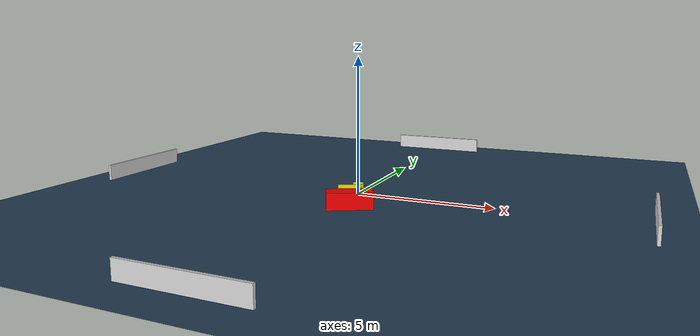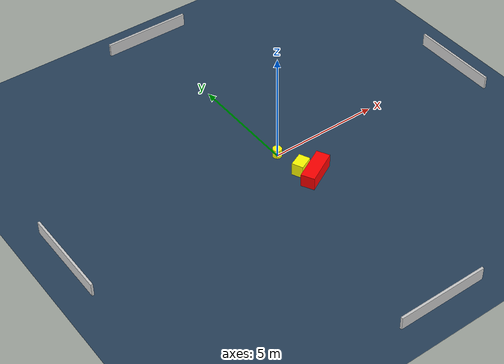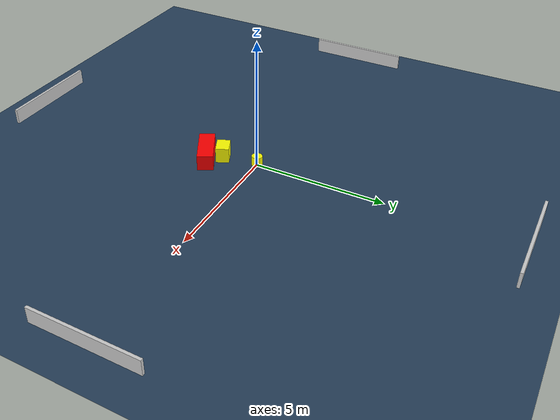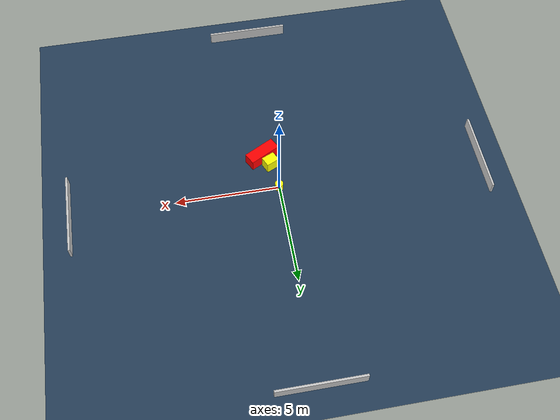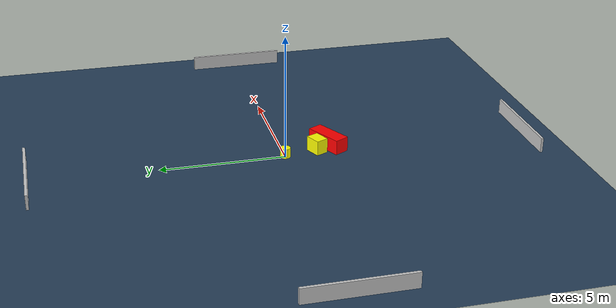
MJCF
<?xml version="1.0" ?>
<mujoco model="generated_environment">
  <option timestep="0.01" integrator="RK4" cone="elliptic"/>
  <default>
    <geom density="1"/>
  </default>
  <asset>
    <texture builtin="gradient" height="3072" name="skybox" rgb1="0.3 0.5 0.7" rgb2="0 0 0" type="skybox" width="512"/>
    <texture builtin="checker" height="300" name="groundplane" rgb1="0.2 0.3 0.4" rgb2="0.1 0.2 0.3" type="2d" width="300"/>
    <material name="groundplane" reflectance="0.2" texrepeat="5 5" texture="groundplane"/>
  </asset>
  <worldbody>
    <light dir="0 0 -1" directional="true" pos="0 0 1.5"/>
    <geom condim="3" friction="0.5 0.005 0.001" material="groundplane" name="floor" pos="0 0 0" size="0 0 0.05" type="plane"/>
    <body name="walls">
      <geom name="wall_1" condim="4" pos="-10.0 0.0 0.3" rgba="0.800000011920929 0.800000011920929 0.800000011920929 1.0" size="0.05 2.0 0.3" type="box"/>
      <geom name="wall_2" condim="4" pos="10.0 0.0 0.3" rgba="0.800000011920929 0.800000011920929 0.800000011920929 1.0" size="0.05 2.0 0.3" type="box"/>
      <geom name="wall_3" condim="4" pos="0.0 -10.0 0.3" rgba="0.800000011920929 0.800000011920929 0.800000011920929 1.0" size="2.0 0.05 0.3" type="box"/>
      <geom name="wall_4" condim="4" pos="0.0 10.0 0.3" rgba="0.800000011920929 0.800000011920929 0.800000011920929 1.0" size="2.0 0.05 0.3" type="box"/>
    </body>
    <body name="robot">
      <joint name="joint_x" type="slide" pos="0 0 0" axis="1 0 0"/>
      <joint name="joint_y" type="slide" pos="0 0 0" axis="0 1 0"/>
      <geom name="robot" type="cylinder" pos="0.0 0.0 0.2" size="0.2 0.2 0.0" mass="5.0" friction="1.0 0.005 0.0001" condim="4" rgba="1.0 1.0 0.0 1.0"/>
    </body>
    <body name="obstacle_1_movable">
      <geom name="obstacle_1_movable" condim="4" pos="0.19288696611425224 -1.3536809918909871 0.3" euler="0 0 204.3007368830414" friction="0.0 0.005 0.001" rgba="1.0 1.0 0.0 1.0" size="0.32587470379646344 0.2522789954442249 0.3" type="box" mass="0.1"/>
      <joint type="free"/>
    </body>
    <body name="obstacle_2_static">
      <geom name="obstacle_2_static" condim="4" pos="0.5149365397703513 -1.8965145055819943 0.3" euler="0 0 118.1375772218446" friction="0.0 0.005 0.001" rgba="1.0 0.0 0.0 1.0" size="0.30178311333607283 0.7932263754388091 0.3" type="box"/>
    </body>
  </worldbody>
  <actuator>
    <motor name="actuator_x" joint="joint_x" gear="1" ctrlrange="-1 1"/>
    <motor name="actuator_y" joint="joint_y" gear="1" ctrlrange="-1 1"/>
  </actuator>
</mujoco>
